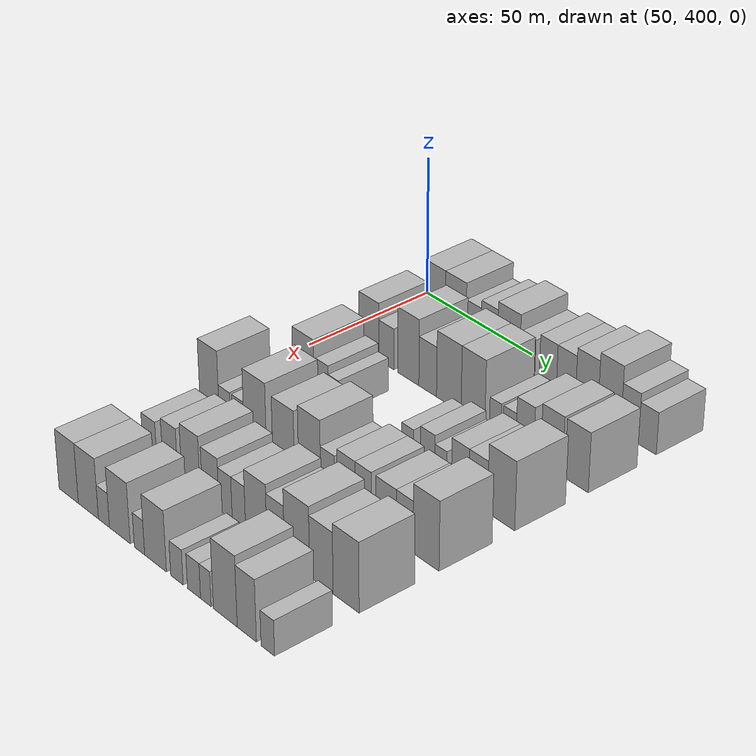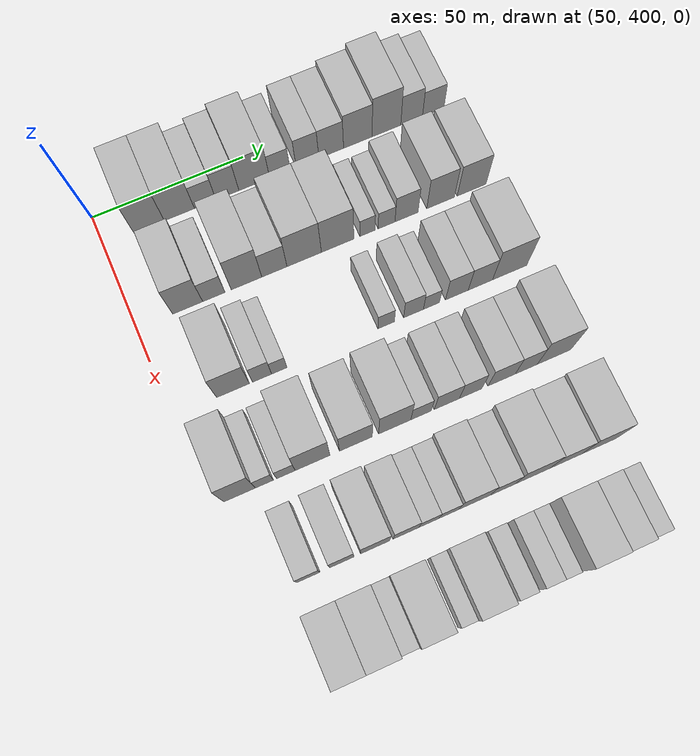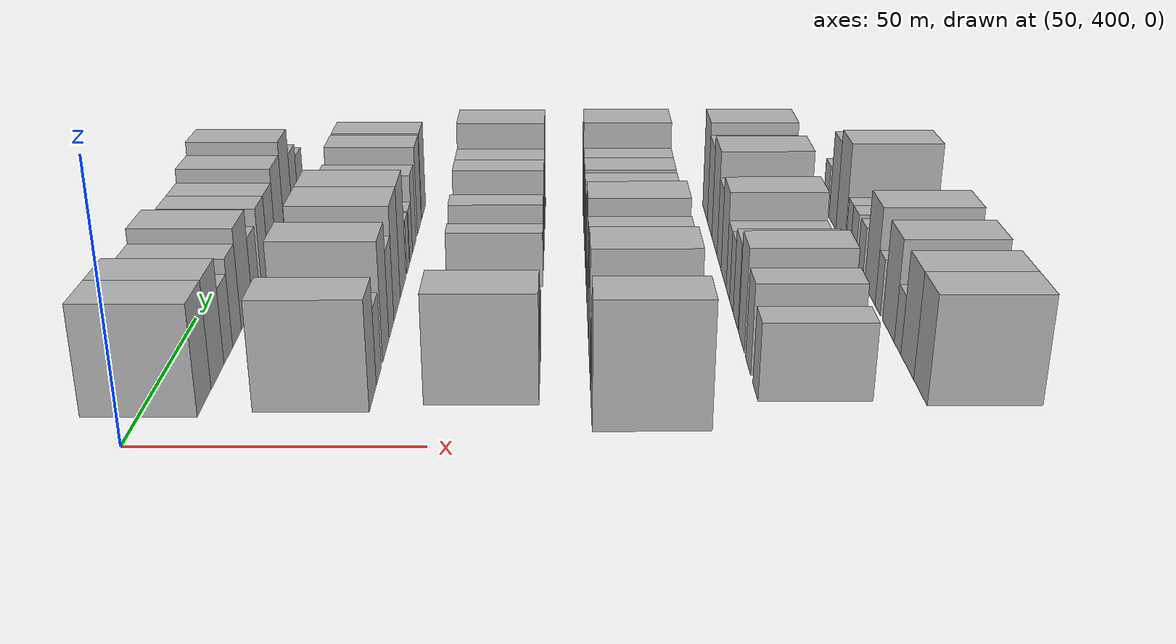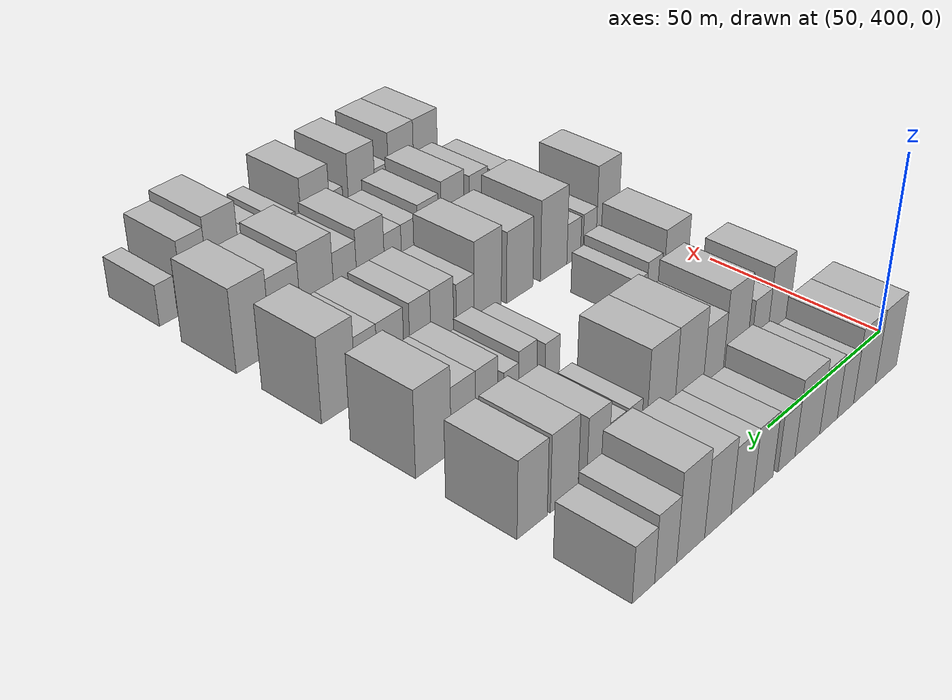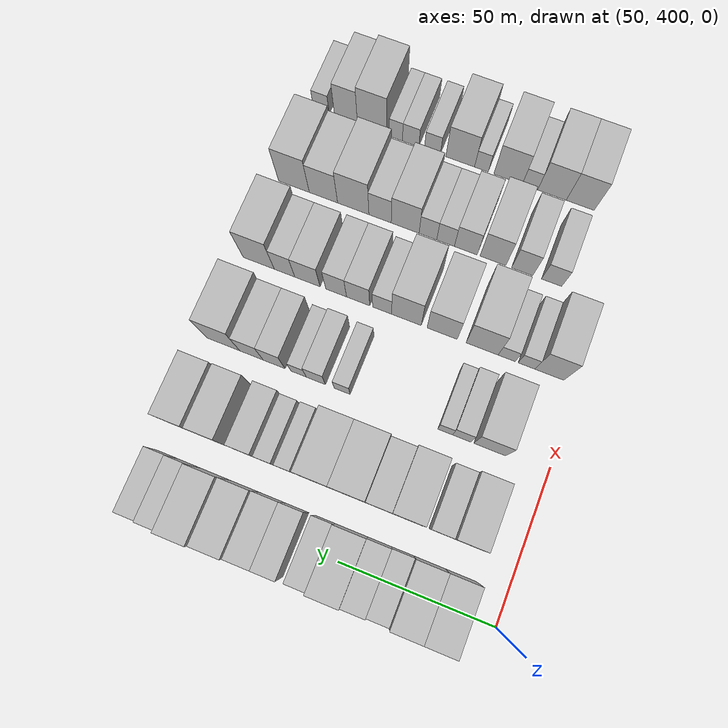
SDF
<sdf version="1.6">
 <world name="default">
  <model name="building_104">
   <static>1</static>
   <pose>50.0000 414.8963 0 0.000000 0.000000 0.000000</pose>
   <link name="link">
    <pose>0 0 10.50 0 0 0</pose>
    <collision name="collision"><geometry><box><size>20.0000 9.9600 21.0000</size></box></geometry></collision>
    <visual name="visual">
     <cast_shadows>0</cast_shadows>
     <geometry><box><size>20.0000 9.9600 21.0000</size></box></geometry>
     <material>
      <script>
       <uri>model://HANNAS_wall/materials/scripts</uri>
       <uri>model://HANNAS_wall/materials/textures</uri>
       <name>vrc/HANNAS_wall</name>
      </script>
     </material>
    </visual>
   </link>
  </model>
  <model name="building_105">
   <static>1</static>
   <pose>50.0000 424.8502 0 0.000000 0.000000 0.000000</pose>
   <link name="link">
    <pose>0 0 10.50 0 0 0</pose>
    <collision name="collision"><geometry><box><size>20.0000 9.9479 21.0000</size></box></geometry></collision>
    <visual name="visual">
     <cast_shadows>0</cast_shadows>
     <geometry><box><size>20.0000 9.9479 21.0000</size></box></geometry>
     <material>
      <script>
       <uri>model://HANNAS_wall/materials/scripts</uri>
       <uri>model://HANNAS_wall/materials/textures</uri>
       <name>vrc/HANNAS_wall</name>
      </script>
     </material>
    </visual>
   </link>
  </model>
  <model name="building_106">
   <static>1</static>
   <pose>50.0000 433.3839 0 0.000000 0.000000 0.000000</pose>
   <link name="link">
    <pose>0 0 7.50 0 0 0</pose>
    <collision name="collision"><geometry><box><size>20.0000 7.1195 15.0000</size></box></geometry></collision>
    <visual name="visual">
     <cast_shadows>0</cast_shadows>
     <geometry><box><size>20.0000 7.1195 15.0000</size></box></geometry>
     <material>
      <script>
       <uri>model://HANNAS_wall/materials/scripts</uri>
       <uri>model://HANNAS_wall/materials/textures</uri>
       <name>vrc/HANNAS_wall</name>
      </script>
     </material>
    </visual>
   </link>
  </model>
  <model name="building_107">
   <static>1</static>
   <pose>50.0000 440.7537 0 0.000000 0.000000 0.000000</pose>
   <link name="link">
    <pose>0 0 9.00 0 0 0</pose>
    <collision name="collision"><geometry><box><size>20.0000 7.6201 18.0000</size></box></geometry></collision>
    <visual name="visual">
     <cast_shadows>0</cast_shadows>
     <geometry><box><size>20.0000 7.6201 18.0000</size></box></geometry>
     <material>
      <script>
       <uri>model://HANNAS_wall/materials/scripts</uri>
       <uri>model://HANNAS_wall/materials/textures</uri>
       <name>vrc/HANNAS_wall</name>
      </script>
     </material>
    </visual>
   </link>
  </model>
  <model name="building_108">
   <static>1</static>
   <pose>50.0000 449.7264 0 0.000000 0.000000 0.000000</pose>
   <link name="link">
    <pose>0 0 10.50 0 0 0</pose>
    <collision name="collision"><geometry><box><size>20.0000 10.3253 21.0000</size></box></geometry></collision>
    <visual name="visual">
     <cast_shadows>0</cast_shadows>
     <geometry><box><size>20.0000 10.3253 21.0000</size></box></geometry>
     <material>
      <script>
       <uri>model://HANNAS_wall/materials/scripts</uri>
       <uri>model://HANNAS_wall/materials/textures</uri>
       <name>vrc/HANNAS_wall</name>
      </script>
     </material>
    </visual>
   </link>
  </model>
  <model name="building_109">
   <static>1</static>
   <pose>50.0000 458.3305 0 0.000000 0.000000 0.000000</pose>
   <link name="link">
    <pose>0 0 7.50 0 0 0</pose>
    <collision name="collision"><geometry><box><size>20.0000 6.8830 15.0000</size></box></geometry></collision>
    <visual name="visual">
     <cast_shadows>0</cast_shadows>
     <geometry><box><size>20.0000 6.8830 15.0000</size></box></geometry>
     <material>
      <script>
       <uri>model://HANNAS_wall/materials/scripts</uri>
       <uri>model://HANNAS_wall/materials/textures</uri>
       <name>vrc/HANNAS_wall</name>
      </script>
     </material>
    </visual>
   </link>
  </model>
  <model name="building_110">
   <static>1</static>
   <pose>50.0000 467.6304 0 0.000000 0.000000 0.000000</pose>
   <link name="link">
    <pose>0 0 9.00 0 0 0</pose>
    <collision name="collision"><geometry><box><size>20.0000 7.7169 18.0000</size></box></geometry></collision>
    <visual name="visual">
     <cast_shadows>0</cast_shadows>
     <geometry><box><size>20.0000 7.7169 18.0000</size></box></geometry>
     <material>
      <script>
       <uri>model://HANNAS_wall/materials/scripts</uri>
       <uri>model://HANNAS_wall/materials/textures</uri>
       <name>vrc/HANNAS_wall</name>
      </script>
     </material>
    </visual>
   </link>
  </model>
  <model name="building_111">
   <static>1</static>
   <pose>50.0000 475.6979 0 0.000000 0.000000 0.000000</pose>
   <link name="link">
    <pose>0 0 9.00 0 0 0</pose>
    <collision name="collision"><geometry><box><size>20.0000 8.4179 18.0000</size></box></geometry></collision>
    <visual name="visual">
     <cast_shadows>0</cast_shadows>
     <geometry><box><size>20.0000 8.4179 18.0000</size></box></geometry>
     <material>
      <script>
       <uri>model://HANNAS_wall/materials/scripts</uri>
       <uri>model://HANNAS_wall/materials/textures</uri>
       <name>vrc/HANNAS_wall</name>
      </script>
     </material>
    </visual>
   </link>
  </model>
  <model name="building_112">
   <static>1</static>
   <pose>50.0000 484.7944 0 0.000000 0.000000 0.000000</pose>
   <link name="link">
    <pose>0 0 10.50 0 0 0</pose>
    <collision name="collision"><geometry><box><size>20.0000 9.7751 21.0000</size></box></geometry></collision>
    <visual name="visual">
     <cast_shadows>0</cast_shadows>
     <geometry><box><size>20.0000 9.7751 21.0000</size></box></geometry>
     <material>
      <script>
       <uri>model://HANNAS_wall/materials/scripts</uri>
       <uri>model://HANNAS_wall/materials/textures</uri>
       <name>vrc/HANNAS_wall</name>
      </script>
     </material>
    </visual>
   </link>
  </model>
  <model name="building_113">
   <static>1</static>
   <pose>50.0000 494.6254 0 0.000000 0.000000 0.000000</pose>
   <link name="link">
    <pose>0 0 12.00 0 0 0</pose>
    <collision name="collision"><geometry><box><size>20.0000 9.8869 24.0000</size></box></geometry></collision>
    <visual name="visual">
     <cast_shadows>0</cast_shadows>
     <geometry><box><size>20.0000 9.8869 24.0000</size></box></geometry>
     <material>
      <script>
       <uri>model://HANNAS_wall/materials/scripts</uri>
       <uri>model://HANNAS_wall/materials/textures</uri>
       <name>vrc/HANNAS_wall</name>
      </script>
     </material>
    </visual>
   </link>
  </model>
  <model name="building_114">
   <static>1</static>
   <pose>50.0000 503.3382 0 0.000000 0.000000 0.000000</pose>
   <link name="link">
    <pose>0 0 9.00 0 0 0</pose>
    <collision name="collision"><geometry><box><size>20.0000 7.5388 18.0000</size></box></geometry></collision>
    <visual name="visual">
     <cast_shadows>0</cast_shadows>
     <geometry><box><size>20.0000 7.5388 18.0000</size></box></geometry>
     <material>
      <script>
       <uri>model://HANNAS_wall/materials/scripts</uri>
       <uri>model://HANNAS_wall/materials/textures</uri>
       <name>vrc/HANNAS_wall</name>
      </script>
     </material>
    </visual>
   </link>
  </model>
  <model name="building_115">
   <static>1</static>
   <pose>50.0000 510.8401 0 0.000000 0.000000 0.000000</pose>
   <link name="link">
    <pose>0 0 7.50 0 0 0</pose>
    <collision name="collision"><geometry><box><size>20.0000 7.4650 15.0000</size></box></geometry></collision>
    <visual name="visual">
     <cast_shadows>0</cast_shadows>
     <geometry><box><size>20.0000 7.4650 15.0000</size></box></geometry>
     <material>
      <script>
       <uri>model://HANNAS_wall/materials/scripts</uri>
       <uri>model://HANNAS_wall/materials/textures</uri>
       <name>vrc/HANNAS_wall</name>
      </script>
     </material>
    </visual>
   </link>
  </model>
  <model name="building_208">
   <static>1</static>
   <pose>79.0000 416.3554 0 0.000000 0.000000 0.000000</pose>
   <link name="link">
    <pose>0 0 10.50 0 0 0</pose>
    <collision name="collision"><geometry><box><size>20.0000 9.6581 21.0000</size></box></geometry></collision>
    <visual name="visual">
     <cast_shadows>0</cast_shadows>
     <geometry><box><size>20.0000 9.6581 21.0000</size></box></geometry>
     <material>
      <script>
       <uri>model://HANNAS_wall/materials/scripts</uri>
       <uri>model://HANNAS_wall/materials/textures</uri>
       <name>vrc/HANNAS_wall</name>
      </script>
     </material>
    </visual>
   </link>
  </model>
  <model name="building_209">
   <static>1</static>
   <pose>79.0000 424.7815 0 0.000000 0.000000 0.000000</pose>
   <link name="link">
    <pose>0 0 7.50 0 0 0</pose>
    <collision name="collision"><geometry><box><size>20.0000 7.1941 15.0000</size></box></geometry></collision>
    <visual name="visual">
     <cast_shadows>0</cast_shadows>
     <geometry><box><size>20.0000 7.1941 15.0000</size></box></geometry>
     <material>
      <script>
       <uri>model://HANNAS_wall/materials/scripts</uri>
       <uri>model://HANNAS_wall/materials/textures</uri>
       <name>vrc/HANNAS_wall</name>
      </script>
     </material>
    </visual>
   </link>
  </model>
  <model name="building_210">
   <static>1</static>
   <pose>79.0000 435.3564 0 0.000000 0.000000 0.000000</pose>
   <link name="link">
    <pose>0 0 12.00 0 0 0</pose>
    <collision name="collision"><geometry><box><size>20.0000 9.9558 24.0000</size></box></geometry></collision>
    <visual name="visual">
     <cast_shadows>0</cast_shadows>
     <geometry><box><size>20.0000 9.9558 24.0000</size></box></geometry>
     <material>
      <script>
       <uri>model://HANNAS_wall/materials/scripts</uri>
       <uri>model://HANNAS_wall/materials/textures</uri>
       <name>vrc/HANNAS_wall</name>
      </script>
     </material>
    </visual>
   </link>
  </model>
  <model name="building_211">
   <static>1</static>
   <pose>79.0000 444.4627 0 0.000000 0.000000 0.000000</pose>
   <link name="link">
    <pose>0 0 9.00 0 0 0</pose>
    <collision name="collision"><geometry><box><size>20.0000 8.2567 18.0000</size></box></geometry></collision>
    <visual name="visual">
     <cast_shadows>0</cast_shadows>
     <geometry><box><size>20.0000 8.2567 18.0000</size></box></geometry>
     <material>
      <script>
       <uri>model://HANNAS_wall/materials/scripts</uri>
       <uri>model://HANNAS_wall/materials/textures</uri>
       <name>vrc/HANNAS_wall</name>
      </script>
     </material>
    </visual>
   </link>
  </model>
  <model name="building_212">
   <static>1</static>
   <pose>79.0000 454.2502 0 0.000000 0.000000 0.000000</pose>
   <link name="link">
    <pose>0 0 12.00 0 0 0</pose>
    <collision name="collision"><geometry><box><size>20.0000 11.3183 24.0000</size></box></geometry></collision>
    <visual name="visual">
     <cast_shadows>0</cast_shadows>
     <geometry><box><size>20.0000 11.3183 24.0000</size></box></geometry>
     <material>
      <script>
       <uri>model://HANNAS_wall/materials/scripts</uri>
       <uri>model://HANNAS_wall/materials/textures</uri>
       <name>vrc/HANNAS_wall</name>
      </script>
     </material>
    </visual>
   </link>
  </model>
  <model name="building_213">
   <static>1</static>
   <pose>79.0000 465.3085 0 0.000000 0.000000 0.000000</pose>
   <link name="link">
    <pose>0 0 12.00 0 0 0</pose>
    <collision name="collision"><geometry><box><size>20.0000 10.7983 24.0000</size></box></geometry></collision>
    <visual name="visual">
     <cast_shadows>0</cast_shadows>
     <geometry><box><size>20.0000 10.7983 24.0000</size></box></geometry>
     <material>
      <script>
       <uri>model://HANNAS_wall/materials/scripts</uri>
       <uri>model://HANNAS_wall/materials/textures</uri>
       <name>vrc/HANNAS_wall</name>
      </script>
     </material>
    </visual>
   </link>
  </model>
  <model name="building_214">
   <static>1</static>
   <pose>79.0000 475.2529 0 0.000000 0.000000 0.000000</pose>
   <link name="link">
    <pose>0 0 6.00 0 0 0</pose>
    <collision name="collision"><geometry><box><size>20.0000 5.0904 12.0000</size></box></geometry></collision>
    <visual name="visual">
     <cast_shadows>0</cast_shadows>
     <geometry><box><size>20.0000 5.0904 12.0000</size></box></geometry>
     <material>
      <script>
       <uri>model://HANNAS_wall/materials/scripts</uri>
       <uri>model://HANNAS_wall/materials/textures</uri>
       <name>vrc/HANNAS_wall</name>
      </script>
     </material>
    </visual>
   </link>
  </model>
  <model name="building_215">
   <static>1</static>
   <pose>79.0000 481.6373 0 0.000000 0.000000 0.000000</pose>
   <link name="link">
    <pose>0 0 6.00 0 0 0</pose>
    <collision name="collision"><geometry><box><size>20.0000 5.6784 12.0000</size></box></geometry></collision>
    <visual name="visual">
     <cast_shadows>0</cast_shadows>
     <geometry><box><size>20.0000 5.6784 12.0000</size></box></geometry>
     <material>
      <script>
       <uri>model://HANNAS_wall/materials/scripts</uri>
       <uri>model://HANNAS_wall/materials/textures</uri>
       <name>vrc/HANNAS_wall</name>
      </script>
     </material>
    </visual>
   </link>
  </model>
  <model name="building_216">
   <static>1</static>
   <pose>79.0000 488.3483 0 0.000000 0.000000 0.000000</pose>
   <link name="link">
    <pose>0 0 9.00 0 0 0</pose>
    <collision name="collision"><geometry><box><size>20.0000 7.7437 18.0000</size></box></geometry></collision>
    <visual name="visual">
     <cast_shadows>0</cast_shadows>
     <geometry><box><size>20.0000 7.7437 18.0000</size></box></geometry>
     <material>
      <script>
       <uri>model://HANNAS_wall/materials/scripts</uri>
       <uri>model://HANNAS_wall/materials/textures</uri>
       <name>vrc/HANNAS_wall</name>
      </script>
     </material>
    </visual>
   </link>
  </model>
  <model name="building_217">
   <static>1</static>
   <pose>79.0000 499.8976 0 0.000000 0.000000 0.000000</pose>
   <link name="link">
    <pose>0 0 10.50 0 0 0</pose>
    <collision name="collision"><geometry><box><size>20.0000 9.3549 21.0000</size></box></geometry></collision>
    <visual name="visual">
     <cast_shadows>0</cast_shadows>
     <geometry><box><size>20.0000 9.3549 21.0000</size></box></geometry>
     <material>
      <script>
       <uri>model://HANNAS_wall/materials/scripts</uri>
       <uri>model://HANNAS_wall/materials/textures</uri>
       <name>vrc/HANNAS_wall</name>
      </script>
     </material>
    </visual>
   </link>
  </model>
  <model name="building_218">
   <static>1</static>
   <pose>79.0000 510.4952 0 0.000000 0.000000 0.000000</pose>
   <link name="link">
    <pose>0 0 10.50 0 0 0</pose>
    <collision name="collision"><geometry><box><size>20.0000 9.8402 21.0000</size></box></geometry></collision>
    <visual name="visual">
     <cast_shadows>0</cast_shadows>
     <geometry><box><size>20.0000 9.8402 21.0000</size></box></geometry>
     <material>
      <script>
       <uri>model://HANNAS_wall/materials/scripts</uri>
       <uri>model://HANNAS_wall/materials/textures</uri>
       <name>vrc/HANNAS_wall</name>
      </script>
     </material>
    </visual>
   </link>
  </model>
  <model name="building_322">
   <static>1</static>
   <pose>108.0000 419.3369 0 0.000000 0.000000 0.000000</pose>
   <link name="link">
    <pose>0 0 10.50 0 0 0</pose>
    <collision name="collision"><geometry><box><size>20.0000 10.3617 21.0000</size></box></geometry></collision>
    <visual name="visual">
     <cast_shadows>0</cast_shadows>
     <geometry><box><size>20.0000 10.3617 21.0000</size></box></geometry>
     <material>
      <script>
       <uri>model://HANNAS_wall/materials/scripts</uri>
       <uri>model://HANNAS_wall/materials/textures</uri>
       <name>vrc/HANNAS_wall</name>
      </script>
     </material>
    </visual>
   </link>
  </model>
  <model name="building_323">
   <static>1</static>
   <pose>108.0000 428.5474 0 0.000000 0.000000 0.000000</pose>
   <link name="link">
    <pose>0 0 7.50 0 0 0</pose>
    <collision name="collision"><geometry><box><size>20.0000 6.0593 15.0000</size></box></geometry></collision>
    <visual name="visual">
     <cast_shadows>0</cast_shadows>
     <geometry><box><size>20.0000 6.0593 15.0000</size></box></geometry>
     <material>
      <script>
       <uri>model://HANNAS_wall/materials/scripts</uri>
       <uri>model://HANNAS_wall/materials/textures</uri>
       <name>vrc/HANNAS_wall</name>
      </script>
     </material>
    </visual>
   </link>
  </model>
  <model name="building_324">
   <static>1</static>
   <pose>108.0000 434.0024 0 0.000000 0.000000 0.000000</pose>
   <link name="link">
    <pose>0 0 6.00 0 0 0</pose>
    <collision name="collision"><geometry><box><size>20.0000 4.8506 12.0000</size></box></geometry></collision>
    <visual name="visual">
     <cast_shadows>0</cast_shadows>
     <geometry><box><size>20.0000 4.8506 12.0000</size></box></geometry>
     <material>
      <script>
       <uri>model://HANNAS_wall/materials/scripts</uri>
       <uri>model://HANNAS_wall/materials/textures</uri>
       <name>vrc/HANNAS_wall</name>
      </script>
     </material>
    </visual>
   </link>
  </model>
  <model name="building_325">
   <static>1</static>
   <pose>108.0000 468.4965 0 0.000000 0.000000 0.000000</pose>
   <link name="link">
    <pose>0 0 6.00 0 0 0</pose>
    <collision name="collision"><geometry><box><size>20.0000 5.3793 12.0000</size></box></geometry></collision>
    <visual name="visual">
     <cast_shadows>0</cast_shadows>
     <geometry><box><size>20.0000 5.3793 12.0000</size></box></geometry>
     <material>
      <script>
       <uri>model://HANNAS_wall/materials/scripts</uri>
       <uri>model://HANNAS_wall/materials/textures</uri>
       <name>vrc/HANNAS_wall</name>
      </script>
     </material>
    </visual>
   </link>
  </model>
  <model name="building_326">
   <static>1</static>
   <pose>108.0000 477.4508 0 0.000000 0.000000 0.000000</pose>
   <link name="link">
    <pose>0 0 7.50 0 0 0</pose>
    <collision name="collision"><geometry><box><size>20.0000 6.5293 15.0000</size></box></geometry></collision>
    <visual name="visual">
     <cast_shadows>0</cast_shadows>
     <geometry><box><size>20.0000 6.5293 15.0000</size></box></geometry>
     <material>
      <script>
       <uri>model://HANNAS_wall/materials/scripts</uri>
       <uri>model://HANNAS_wall/materials/textures</uri>
       <name>vrc/HANNAS_wall</name>
      </script>
     </material>
    </visual>
   </link>
  </model>
  <model name="building_327">
   <static>1</static>
   <pose>108.0000 483.3604 0 0.000000 0.000000 0.000000</pose>
   <link name="link">
    <pose>0 0 6.00 0 0 0</pose>
    <collision name="collision"><geometry><box><size>20.0000 5.2898 12.0000</size></box></geometry></collision>
    <visual name="visual">
     <cast_shadows>0</cast_shadows>
     <geometry><box><size>20.0000 5.2898 12.0000</size></box></geometry>
     <material>
      <script>
       <uri>model://HANNAS_wall/materials/scripts</uri>
       <uri>model://HANNAS_wall/materials/textures</uri>
       <name>vrc/HANNAS_wall</name>
      </script>
     </material>
    </visual>
   </link>
  </model>
  <model name="building_328">
   <static>1</static>
   <pose>108.0000 491.7881 0 0.000000 0.000000 0.000000</pose>
   <link name="link">
    <pose>0 0 9.00 0 0 0</pose>
    <collision name="collision"><geometry><box><size>20.0000 7.5657 18.0000</size></box></geometry></collision>
    <visual name="visual">
     <cast_shadows>0</cast_shadows>
     <geometry><box><size>20.0000 7.5657 18.0000</size></box></geometry>
     <material>
      <script>
       <uri>model://HANNAS_wall/materials/scripts</uri>
       <uri>model://HANNAS_wall/materials/textures</uri>
       <name>vrc/HANNAS_wall</name>
      </script>
     </material>
    </visual>
   </link>
  </model>
  <model name="building_329">
   <static>1</static>
   <pose>108.0000 499.6287 0 0.000000 0.000000 0.000000</pose>
   <link name="link">
    <pose>0 0 9.00 0 0 0</pose>
    <collision name="collision"><geometry><box><size>20.0000 8.1154 18.0000</size></box></geometry></collision>
    <visual name="visual">
     <cast_shadows>0</cast_shadows>
     <geometry><box><size>20.0000 8.1154 18.0000</size></box></geometry>
     <material>
      <script>
       <uri>model://HANNAS_wall/materials/scripts</uri>
       <uri>model://HANNAS_wall/materials/textures</uri>
       <name>vrc/HANNAS_wall</name>
      </script>
     </material>
    </visual>
   </link>
  </model>
  <model name="building_330">
   <static>1</static>
   <pose>108.0000 509.4358 0 0.000000 0.000000 0.000000</pose>
   <link name="link">
    <pose>0 0 12.00 0 0 0</pose>
    <collision name="collision"><geometry><box><size>20.0000 11.4989 24.0000</size></box></geometry></collision>
    <visual name="visual">
     <cast_shadows>0</cast_shadows>
     <geometry><box><size>20.0000 11.4989 24.0000</size></box></geometry>
     <material>
      <script>
       <uri>model://HANNAS_wall/materials/scripts</uri>
       <uri>model://HANNAS_wall/materials/textures</uri>
       <name>vrc/HANNAS_wall</name>
      </script>
     </material>
    </visual>
   </link>
  </model>
  <model name="building_428">
   <static>1</static>
   <pose>137.0000 409.7149 0 0.000000 0.000000 0.000000</pose>
   <link name="link">
    <pose>0 0 12.00 0 0 0</pose>
    <collision name="collision"><geometry><box><size>20.0000 9.6536 24.0000</size></box></geometry></collision>
    <visual name="visual">
     <cast_shadows>0</cast_shadows>
     <geometry><box><size>20.0000 9.6536 24.0000</size></box></geometry>
     <material>
      <script>
       <uri>model://HANNAS_wall/materials/scripts</uri>
       <uri>model://HANNAS_wall/materials/textures</uri>
       <name>vrc/HANNAS_wall</name>
      </script>
     </material>
    </visual>
   </link>
  </model>
  <model name="building_429">
   <static>1</static>
   <pose>137.0000 417.3408 0 0.000000 0.000000 0.000000</pose>
   <link name="link">
    <pose>0 0 6.00 0 0 0</pose>
    <collision name="collision"><geometry><box><size>20.0000 5.5981 12.0000</size></box></geometry></collision>
    <visual name="visual">
     <cast_shadows>0</cast_shadows>
     <geometry><box><size>20.0000 5.5981 12.0000</size></box></geometry>
     <material>
      <script>
       <uri>model://HANNAS_wall/materials/scripts</uri>
       <uri>model://HANNAS_wall/materials/textures</uri>
       <name>vrc/HANNAS_wall</name>
      </script>
     </material>
    </visual>
   </link>
  </model>
  <model name="building_430">
   <static>1</static>
   <pose>137.0000 424.0137 0 0.000000 0.000000 0.000000</pose>
   <link name="link">
    <pose>0 0 6.00 0 0 0</pose>
    <collision name="collision"><geometry><box><size>20.0000 5.7477 12.0000</size></box></geometry></collision>
    <visual name="visual">
     <cast_shadows>0</cast_shadows>
     <geometry><box><size>20.0000 5.7477 12.0000</size></box></geometry>
     <material>
      <script>
       <uri>model://HANNAS_wall/materials/scripts</uri>
       <uri>model://HANNAS_wall/materials/textures</uri>
       <name>vrc/HANNAS_wall</name>
      </script>
     </material>
    </visual>
   </link>
  </model>
  <model name="building_431">
   <static>1</static>
   <pose>137.0000 432.3203 0 0.000000 0.000000 0.000000</pose>
   <link name="link">
    <pose>0 0 12.00 0 0 0</pose>
    <collision name="collision"><geometry><box><size>20.0000 10.8655 24.0000</size></box></geometry></collision>
    <visual name="visual">
     <cast_shadows>0</cast_shadows>
     <geometry><box><size>20.0000 10.8655 24.0000</size></box></geometry>
     <material>
      <script>
       <uri>model://HANNAS_wall/materials/scripts</uri>
       <uri>model://HANNAS_wall/materials/textures</uri>
       <name>vrc/HANNAS_wall</name>
      </script>
     </material>
    </visual>
   </link>
  </model>
  <model name="building_432">
   <static>1</static>
   <pose>137.0000 445.9127 0 0.000000 0.000000 0.000000</pose>
   <link name="link">
    <pose>0 0 10.50 0 0 0</pose>
    <collision name="collision"><geometry><box><size>20.0000 10.3193 21.0000</size></box></geometry></collision>
    <visual name="visual">
     <cast_shadows>0</cast_shadows>
     <geometry><box><size>20.0000 10.3193 21.0000</size></box></geometry>
     <material>
      <script>
       <uri>model://HANNAS_wall/materials/scripts</uri>
       <uri>model://HANNAS_wall/materials/textures</uri>
       <name>vrc/HANNAS_wall</name>
      </script>
     </material>
    </visual>
   </link>
  </model>
  <model name="building_433">
   <static>1</static>
   <pose>137.0000 458.1941 0 0.000000 0.000000 0.000000</pose>
   <link name="link">
    <pose>0 0 12.00 0 0 0</pose>
    <collision name="collision"><geometry><box><size>20.0000 10.2436 24.0000</size></box></geometry></collision>
    <visual name="visual">
     <cast_shadows>0</cast_shadows>
     <geometry><box><size>20.0000 10.2436 24.0000</size></box></geometry>
     <material>
      <script>
       <uri>model://HANNAS_wall/materials/scripts</uri>
       <uri>model://HANNAS_wall/materials/textures</uri>
       <name>vrc/HANNAS_wall</name>
      </script>
     </material>
    </visual>
   </link>
  </model>
  <model name="building_434">
   <static>1</static>
   <pose>137.0000 466.5795 0 0.000000 0.000000 0.000000</pose>
   <link name="link">
    <pose>0 0 7.50 0 0 0</pose>
    <collision name="collision"><geometry><box><size>20.0000 6.5272 15.0000</size></box></geometry></collision>
    <visual name="visual">
     <cast_shadows>0</cast_shadows>
     <geometry><box><size>20.0000 6.5272 15.0000</size></box></geometry>
     <material>
      <script>
       <uri>model://HANNAS_wall/materials/scripts</uri>
       <uri>model://HANNAS_wall/materials/textures</uri>
       <name>vrc/HANNAS_wall</name>
      </script>
     </material>
    </visual>
   </link>
  </model>
  <model name="building_435">
   <static>1</static>
   <pose>137.0000 474.8945 0 0.000000 0.000000 0.000000</pose>
   <link name="link">
    <pose>0 0 9.00 0 0 0</pose>
    <collision name="collision"><geometry><box><size>20.0000 8.1029 18.0000</size></box></geometry></collision>
    <visual name="visual">
     <cast_shadows>0</cast_shadows>
     <geometry><box><size>20.0000 8.1029 18.0000</size></box></geometry>
     <material>
      <script>
       <uri>model://HANNAS_wall/materials/scripts</uri>
       <uri>model://HANNAS_wall/materials/textures</uri>
       <name>vrc/HANNAS_wall</name>
      </script>
     </material>
    </visual>
   </link>
  </model>
  <model name="building_436">
   <static>1</static>
   <pose>137.0000 482.5739 0 0.000000 0.000000 0.000000</pose>
   <link name="link">
    <pose>0 0 9.00 0 0 0</pose>
    <collision name="collision"><geometry><box><size>20.0000 7.2559 18.0000</size></box></geometry></collision>
    <visual name="visual">
     <cast_shadows>0</cast_shadows>
     <geometry><box><size>20.0000 7.2559 18.0000</size></box></geometry>
     <material>
      <script>
       <uri>model://HANNAS_wall/materials/scripts</uri>
       <uri>model://HANNAS_wall/materials/textures</uri>
       <name>vrc/HANNAS_wall</name>
      </script>
     </material>
    </visual>
   </link>
  </model>
  <model name="building_437">
   <static>1</static>
   <pose>137.0000 492.6488 0 0.000000 0.000000 0.000000</pose>
   <link name="link">
    <pose>0 0 9.00 0 0 0</pose>
    <collision name="collision"><geometry><box><size>20.0000 8.8937 18.0000</size></box></geometry></collision>
    <visual name="visual">
     <cast_shadows>0</cast_shadows>
     <geometry><box><size>20.0000 8.8937 18.0000</size></box></geometry>
     <material>
      <script>
       <uri>model://HANNAS_wall/materials/scripts</uri>
       <uri>model://HANNAS_wall/materials/textures</uri>
       <name>vrc/HANNAS_wall</name>
      </script>
     </material>
    </visual>
   </link>
  </model>
  <model name="building_438">
   <static>1</static>
   <pose>137.0000 500.7303 0 0.000000 0.000000 0.000000</pose>
   <link name="link">
    <pose>0 0 9.00 0 0 0</pose>
    <collision name="collision"><geometry><box><size>20.0000 7.2692 18.0000</size></box></geometry></collision>
    <visual name="visual">
     <cast_shadows>0</cast_shadows>
     <geometry><box><size>20.0000 7.2692 18.0000</size></box></geometry>
     <material>
      <script>
       <uri>model://HANNAS_wall/materials/scripts</uri>
       <uri>model://HANNAS_wall/materials/textures</uri>
       <name>vrc/HANNAS_wall</name>
      </script>
     </material>
    </visual>
   </link>
  </model>
  <model name="building_439">
   <static>1</static>
   <pose>137.0000 509.9125 0 0.000000 0.000000 0.000000</pose>
   <link name="link">
    <pose>0 0 12.00 0 0 0</pose>
    <collision name="collision"><geometry><box><size>20.0000 11.0952 24.0000</size></box></geometry></collision>
    <visual name="visual">
     <cast_shadows>0</cast_shadows>
     <geometry><box><size>20.0000 11.0952 24.0000</size></box></geometry>
     <material>
      <script>
       <uri>model://HANNAS_wall/materials/scripts</uri>
       <uri>model://HANNAS_wall/materials/textures</uri>
       <name>vrc/HANNAS_wall</name>
      </script>
     </material>
    </visual>
   </link>
  </model>
  <model name="building_549">
   <static>1</static>
   <pose>166.0000 418.8003 0 0.000000 0.000000 0.000000</pose>
   <link name="link">
    <pose>0 0 7.50 0 0 0</pose>
    <collision name="collision"><geometry><box><size>20.0000 6.9209 15.0000</size></box></geometry></collision>
    <visual name="visual">
     <cast_shadows>0</cast_shadows>
     <geometry><box><size>20.0000 6.9209 15.0000</size></box></geometry>
     <material>
      <script>
       <uri>model://HANNAS_wall/materials/scripts</uri>
       <uri>model://HANNAS_wall/materials/textures</uri>
       <name>vrc/HANNAS_wall</name>
      </script>
     </material>
    </visual>
   </link>
  </model>
  <model name="building_550">
   <static>1</static>
   <pose>166.0000 428.9334 0 0.000000 0.000000 0.000000</pose>
   <link name="link">
    <pose>0 0 9.00 0 0 0</pose>
    <collision name="collision"><geometry><box><size>20.0000 7.3453 18.0000</size></box></geometry></collision>
    <visual name="visual">
     <cast_shadows>0</cast_shadows>
     <geometry><box><size>20.0000 7.3453 18.0000</size></box></geometry>
     <material>
      <script>
       <uri>model://HANNAS_wall/materials/scripts</uri>
       <uri>model://HANNAS_wall/materials/textures</uri>
       <name>vrc/HANNAS_wall</name>
      </script>
     </material>
    </visual>
   </link>
  </model>
  <model name="building_551">
   <static>1</static>
   <pose>166.0000 439.0850 0 0.000000 0.000000 0.000000</pose>
   <link name="link">
    <pose>0 0 10.50 0 0 0</pose>
    <collision name="collision"><geometry><box><size>20.0000 8.9579 21.0000</size></box></geometry></collision>
    <visual name="visual">
     <cast_shadows>0</cast_shadows>
     <geometry><box><size>20.0000 8.9579 21.0000</size></box></geometry>
     <material>
      <script>
       <uri>model://HANNAS_wall/materials/scripts</uri>
       <uri>model://HANNAS_wall/materials/textures</uri>
       <name>vrc/HANNAS_wall</name>
      </script>
     </material>
    </visual>
   </link>
  </model>
  <model name="building_552">
   <static>1</static>
   <pose>166.0000 448.5425 0 0.000000 0.000000 0.000000</pose>
   <link name="link">
    <pose>0 0 9.00 0 0 0</pose>
    <collision name="collision"><geometry><box><size>20.0000 7.9571 18.0000</size></box></geometry></collision>
    <visual name="visual">
     <cast_shadows>0</cast_shadows>
     <geometry><box><size>20.0000 7.9571 18.0000</size></box></geometry>
     <material>
      <script>
       <uri>model://HANNAS_wall/materials/scripts</uri>
       <uri>model://HANNAS_wall/materials/textures</uri>
       <name>vrc/HANNAS_wall</name>
      </script>
     </material>
    </visual>
   </link>
  </model>
  <model name="building_553">
   <static>1</static>
   <pose>166.0000 455.6238 0 0.000000 0.000000 0.000000</pose>
   <link name="link">
    <pose>0 0 7.50 0 0 0</pose>
    <collision name="collision"><geometry><box><size>20.0000 6.2056 15.0000</size></box></geometry></collision>
    <visual name="visual">
     <cast_shadows>0</cast_shadows>
     <geometry><box><size>20.0000 6.2056 15.0000</size></box></geometry>
     <material>
      <script>
       <uri>model://HANNAS_wall/materials/scripts</uri>
       <uri>model://HANNAS_wall/materials/textures</uri>
       <name>vrc/HANNAS_wall</name>
      </script>
     </material>
    </visual>
   </link>
  </model>
  <model name="building_554">
   <static>1</static>
   <pose>166.0000 461.8404 0 0.000000 0.000000 0.000000</pose>
   <link name="link">
    <pose>0 0 7.50 0 0 0</pose>
    <collision name="collision"><geometry><box><size>20.0000 6.2276 15.0000</size></box></geometry></collision>
    <visual name="visual">
     <cast_shadows>0</cast_shadows>
     <geometry><box><size>20.0000 6.2276 15.0000</size></box></geometry>
     <material>
      <script>
       <uri>model://HANNAS_wall/materials/scripts</uri>
       <uri>model://HANNAS_wall/materials/textures</uri>
       <name>vrc/HANNAS_wall</name>
      </script>
     </material>
    </visual>
   </link>
  </model>
  <model name="building_555">
   <static>1</static>
   <pose>166.0000 469.8942 0 0.000000 0.000000 0.000000</pose>
   <link name="link">
    <pose>0 0 10.50 0 0 0</pose>
    <collision name="collision"><geometry><box><size>20.0000 9.8801 21.0000</size></box></geometry></collision>
    <visual name="visual">
     <cast_shadows>0</cast_shadows>
     <geometry><box><size>20.0000 9.8801 21.0000</size></box></geometry>
     <material>
      <script>
       <uri>model://HANNAS_wall/materials/scripts</uri>
       <uri>model://HANNAS_wall/materials/textures</uri>
       <name>vrc/HANNAS_wall</name>
      </script>
     </material>
    </visual>
   </link>
  </model>
  <model name="building_556">
   <static>1</static>
   <pose>166.0000 478.8161 0 0.000000 0.000000 0.000000</pose>
   <link name="link">
    <pose>0 0 9.00 0 0 0</pose>
    <collision name="collision"><geometry><box><size>20.0000 7.9637 18.0000</size></box></geometry></collision>
    <visual name="visual">
     <cast_shadows>0</cast_shadows>
     <geometry><box><size>20.0000 7.9637 18.0000</size></box></geometry>
     <material>
      <script>
       <uri>model://HANNAS_wall/materials/scripts</uri>
       <uri>model://HANNAS_wall/materials/textures</uri>
       <name>vrc/HANNAS_wall</name>
      </script>
     </material>
    </visual>
   </link>
  </model>
  <model name="building_557">
   <static>1</static>
   <pose>166.0000 488.4131 0 0.000000 0.000000 0.000000</pose>
   <link name="link">
    <pose>0 0 12.00 0 0 0</pose>
    <collision name="collision"><geometry><box><size>20.0000 11.2304 24.0000</size></box></geometry></collision>
    <visual name="visual">
     <cast_shadows>0</cast_shadows>
     <geometry><box><size>20.0000 11.2304 24.0000</size></box></geometry>
     <material>
      <script>
       <uri>model://HANNAS_wall/materials/scripts</uri>
       <uri>model://HANNAS_wall/materials/textures</uri>
       <name>vrc/HANNAS_wall</name>
      </script>
     </material>
    </visual>
   </link>
  </model>
  <model name="building_558">
   <static>1</static>
   <pose>166.0000 499.1440 0 0.000000 0.000000 0.000000</pose>
   <link name="link">
    <pose>0 0 10.50 0 0 0</pose>
    <collision name="collision"><geometry><box><size>20.0000 10.2313 21.0000</size></box></geometry></collision>
    <visual name="visual">
     <cast_shadows>0</cast_shadows>
     <geometry><box><size>20.0000 10.2313 21.0000</size></box></geometry>
     <material>
      <script>
       <uri>model://HANNAS_wall/materials/scripts</uri>
       <uri>model://HANNAS_wall/materials/textures</uri>
       <name>vrc/HANNAS_wall</name>
      </script>
     </material>
    </visual>
   </link>
  </model>
  <model name="building_559">
   <static>1</static>
   <pose>166.0000 509.8389 0 0.000000 0.000000 0.000000</pose>
   <link name="link">
    <pose>0 0 12.00 0 0 0</pose>
    <collision name="collision"><geometry><box><size>20.0000 11.1586 24.0000</size></box></geometry></collision>
    <visual name="visual">
     <cast_shadows>0</cast_shadows>
     <geometry><box><size>20.0000 11.1586 24.0000</size></box></geometry>
     <material>
      <script>
       <uri>model://HANNAS_wall/materials/scripts</uri>
       <uri>model://HANNAS_wall/materials/textures</uri>
       <name>vrc/HANNAS_wall</name>
      </script>
     </material>
    </visual>
   </link>
  </model>
  <model name="building_659">
   <static>1</static>
   <pose>195.0000 418.5790 0 0.000000 0.000000 0.000000</pose>
   <link name="link">
    <pose>0 0 10.50 0 0 0</pose>
    <collision name="collision"><geometry><box><size>20.0000 9.8003 21.0000</size></box></geometry></collision>
    <visual name="visual">
     <cast_shadows>0</cast_shadows>
     <geometry><box><size>20.0000 9.8003 21.0000</size></box></geometry>
     <material>
      <script>
       <uri>model://HANNAS_wall/materials/scripts</uri>
       <uri>model://HANNAS_wall/materials/textures</uri>
       <name>vrc/HANNAS_wall</name>
      </script>
     </material>
    </visual>
   </link>
  </model>
  <model name="building_660">
   <static>1</static>
   <pose>195.0000 428.5129 0 0.000000 0.000000 0.000000</pose>
   <link name="link">
    <pose>0 0 10.50 0 0 0</pose>
    <collision name="collision"><geometry><box><size>20.0000 10.0675 21.0000</size></box></geometry></collision>
    <visual name="visual">
     <cast_shadows>0</cast_shadows>
     <geometry><box><size>20.0000 10.0675 21.0000</size></box></geometry>
     <material>
      <script>
       <uri>model://HANNAS_wall/materials/scripts</uri>
       <uri>model://HANNAS_wall/materials/textures</uri>
       <name>vrc/HANNAS_wall</name>
      </script>
     </material>
    </visual>
   </link>
  </model>
  <model name="building_661">
   <static>1</static>
   <pose>195.0000 436.2704 0 0.000000 0.000000 0.000000</pose>
   <link name="link">
    <pose>0 0 6.00 0 0 0</pose>
    <collision name="collision"><geometry><box><size>20.0000 5.4474 12.0000</size></box></geometry></collision>
    <visual name="visual">
     <cast_shadows>0</cast_shadows>
     <geometry><box><size>20.0000 5.4474 12.0000</size></box></geometry>
     <material>
      <script>
       <uri>model://HANNAS_wall/materials/scripts</uri>
       <uri>model://HANNAS_wall/materials/textures</uri>
       <name>vrc/HANNAS_wall</name>
      </script>
     </material>
    </visual>
   </link>
  </model>
  <model name="building_662">
   <static>1</static>
   <pose>195.0000 444.0655 0 0.000000 0.000000 0.000000</pose>
   <link name="link">
    <pose>0 0 10.50 0 0 0</pose>
    <collision name="collision"><geometry><box><size>20.0000 10.1429 21.0000</size></box></geometry></collision>
    <visual name="visual">
     <cast_shadows>0</cast_shadows>
     <geometry><box><size>20.0000 10.1429 21.0000</size></box></geometry>
     <material>
      <script>
       <uri>model://HANNAS_wall/materials/scripts</uri>
       <uri>model://HANNAS_wall/materials/textures</uri>
       <name>vrc/HANNAS_wall</name>
      </script>
     </material>
    </visual>
   </link>
  </model>
  <model name="building_663">
   <static>1</static>
   <pose>195.0000 453.6093 0 0.000000 0.000000 0.000000</pose>
   <link name="link">
    <pose>0 0 6.00 0 0 0</pose>
    <collision name="collision"><geometry><box><size>20.0000 4.9446 12.0000</size></box></geometry></collision>
    <visual name="visual">
     <cast_shadows>0</cast_shadows>
     <geometry><box><size>20.0000 4.9446 12.0000</size></box></geometry>
     <material>
      <script>
       <uri>model://HANNAS_wall/materials/scripts</uri>
       <uri>model://HANNAS_wall/materials/textures</uri>
       <name>vrc/HANNAS_wall</name>
      </script>
     </material>
    </visual>
   </link>
  </model>
  <model name="building_664">
   <static>1</static>
   <pose>195.0000 461.2460 0 0.000000 0.000000 0.000000</pose>
   <link name="link">
    <pose>0 0 10.50 0 0 0</pose>
    <collision name="collision"><geometry><box><size>20.0000 10.3290 21.0000</size></box></geometry></collision>
    <visual name="visual">
     <cast_shadows>0</cast_shadows>
     <geometry><box><size>20.0000 10.3290 21.0000</size></box></geometry>
     <material>
      <script>
       <uri>model://HANNAS_wall/materials/scripts</uri>
       <uri>model://HANNAS_wall/materials/textures</uri>
       <name>vrc/HANNAS_wall</name>
      </script>
     </material>
    </visual>
   </link>
  </model>
  <model name="building_665">
   <static>1</static>
   <pose>195.0000 471.3029 0 0.000000 0.000000 0.000000</pose>
   <link name="link">
    <pose>0 0 6.00 0 0 0</pose>
    <collision name="collision"><geometry><box><size>20.0000 5.7849 12.0000</size></box></geometry></collision>
    <visual name="visual">
     <cast_shadows>0</cast_shadows>
     <geometry><box><size>20.0000 5.7849 12.0000</size></box></geometry>
     <material>
      <script>
       <uri>model://HANNAS_wall/materials/scripts</uri>
       <uri>model://HANNAS_wall/materials/textures</uri>
       <name>vrc/HANNAS_wall</name>
      </script>
     </material>
    </visual>
   </link>
  </model>
  <model name="building_666">
   <static>1</static>
   <pose>195.0000 479.1923 0 0.000000 0.000000 0.000000</pose>
   <link name="link">
    <pose>0 0 6.00 0 0 0</pose>
    <collision name="collision"><geometry><box><size>20.0000 5.9938 12.0000</size></box></geometry></collision>
    <visual name="visual">
     <cast_shadows>0</cast_shadows>
     <geometry><box><size>20.0000 5.9938 12.0000</size></box></geometry>
     <material>
      <script>
       <uri>model://HANNAS_wall/materials/scripts</uri>
       <uri>model://HANNAS_wall/materials/textures</uri>
       <name>vrc/HANNAS_wall</name>
      </script>
     </material>
    </visual>
   </link>
  </model>
  <model name="building_667">
   <static>1</static>
   <pose>195.0000 484.5972 0 0.000000 0.000000 0.000000</pose>
   <link name="link">
    <pose>0 0 6.00 0 0 0</pose>
    <collision name="collision"><geometry><box><size>20.0000 4.8159 12.0000</size></box></geometry></collision>
    <visual name="visual">
     <cast_shadows>0</cast_shadows>
     <geometry><box><size>20.0000 4.8159 12.0000</size></box></geometry>
     <material>
      <script>
       <uri>model://HANNAS_wall/materials/scripts</uri>
       <uri>model://HANNAS_wall/materials/textures</uri>
       <name>vrc/HANNAS_wall</name>
      </script>
     </material>
    </visual>
   </link>
  </model>
  <model name="building_668">
   <static>1</static>
   <pose>195.0000 493.3365 0 0.000000 0.000000 0.000000</pose>
   <link name="link">
    <pose>0 0 12.00 0 0 0</pose>
    <collision name="collision"><geometry><box><size>20.0000 10.6627 24.0000</size></box></geometry></collision>
    <visual name="visual">
     <cast_shadows>0</cast_shadows>
     <geometry><box><size>20.0000 10.6627 24.0000</size></box></geometry>
     <material>
      <script>
       <uri>model://HANNAS_wall/materials/scripts</uri>
       <uri>model://HANNAS_wall/materials/textures</uri>
       <name>vrc/HANNAS_wall</name>
      </script>
     </material>
    </visual>
   </link>
  </model>
  <model name="building_669">
   <static>1</static>
   <pose>195.0000 502.8827 0 0.000000 0.000000 0.000000</pose>
   <link name="link">
    <pose>0 0 10.50 0 0 0</pose>
    <collision name="collision"><geometry><box><size>20.0000 8.4298 21.0000</size></box></geometry></collision>
    <visual name="visual">
     <cast_shadows>0</cast_shadows>
     <geometry><box><size>20.0000 8.4298 21.0000</size></box></geometry>
     <material>
      <script>
       <uri>model://HANNAS_wall/materials/scripts</uri>
       <uri>model://HANNAS_wall/materials/textures</uri>
       <name>vrc/HANNAS_wall</name>
      </script>
     </material>
    </visual>
   </link>
  </model>
  <model name="building_670">
   <static>1</static>
   <pose>195.0000 512.0121 0 0.000000 0.000000 0.000000</pose>
   <link name="link">
    <pose>0 0 6.00 0 0 0</pose>
    <collision name="collision"><geometry><box><size>20.0000 5.8290 12.0000</size></box></geometry></collision>
    <visual name="visual">
     <cast_shadows>0</cast_shadows>
     <geometry><box><size>20.0000 5.8290 12.0000</size></box></geometry>
     <material>
      <script>
       <uri>model://HANNAS_wall/materials/scripts</uri>
       <uri>model://HANNAS_wall/materials/textures</uri>
       <name>vrc/HANNAS_wall</name>
      </script>
     </material>
    </visual>
   </link>
  </model>
 </world>
</sdf>
